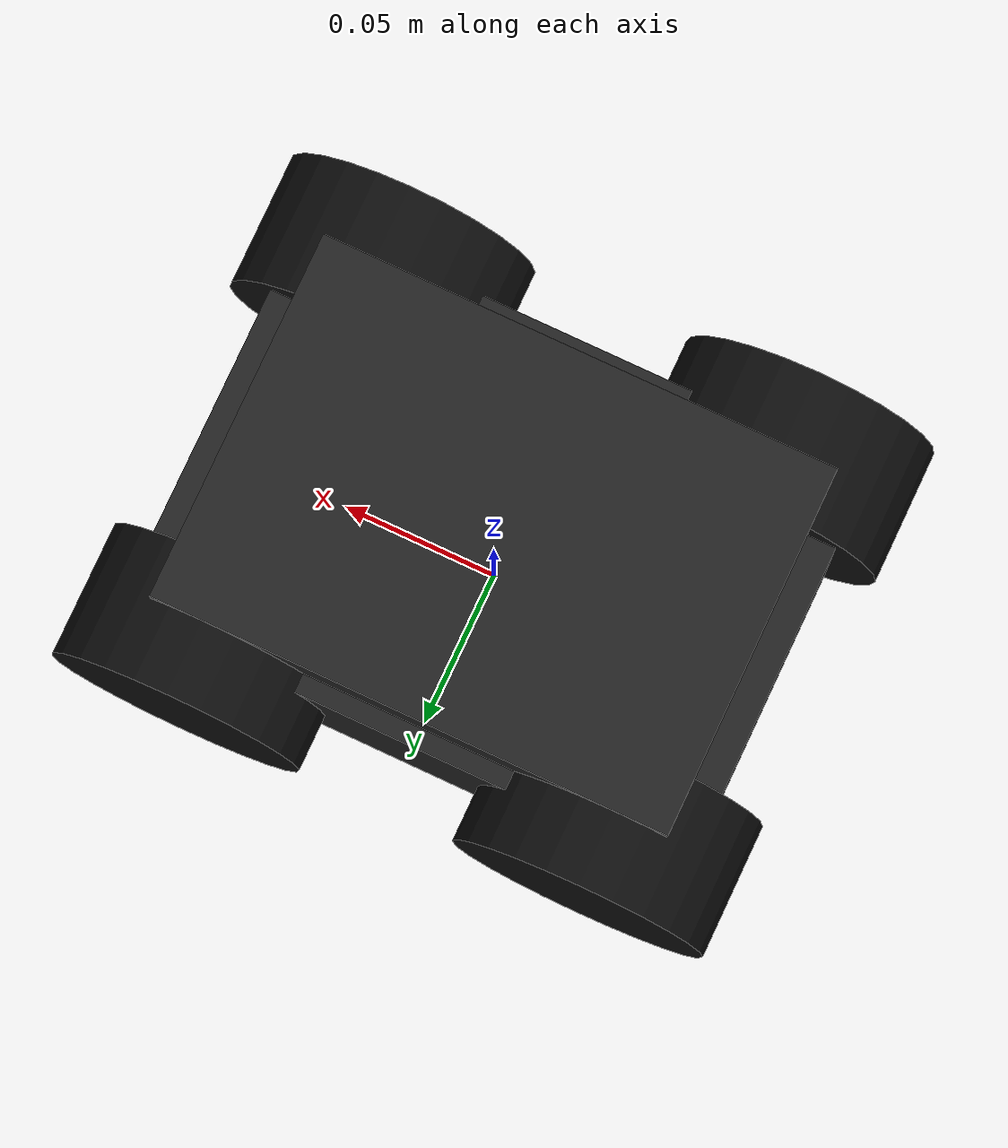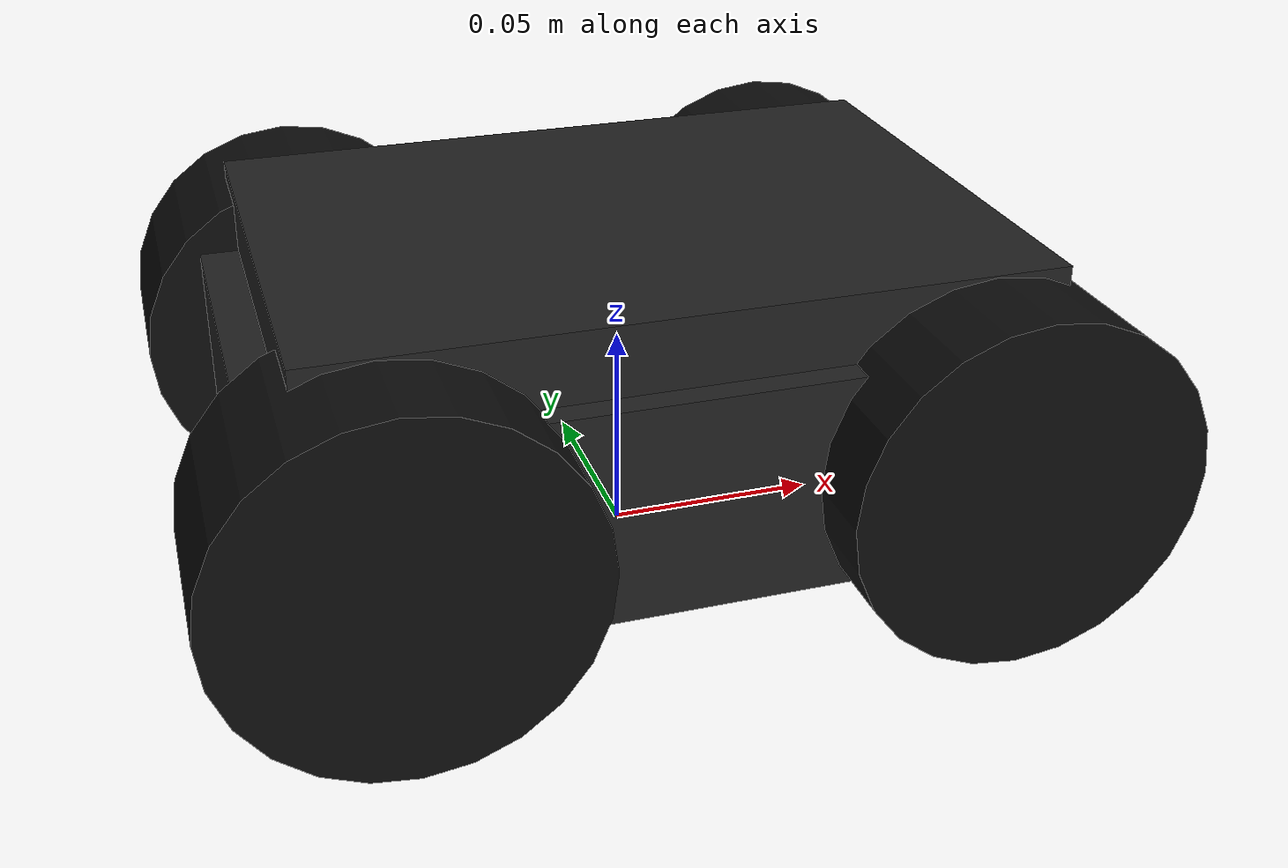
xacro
<?xml version="1.0"?>
<robot xmlns:xacro="http://www.ros.org/wiki/xacro">

  <!-- Rozmery v metroch: telo, kolesa, rozchod (pre Gazebo diff drive a vizual). -->
  <xacro:property name="body_l"       value="0.183"/>
  <xacro:property name="body_w"       value="0.130"/>
  <xacro:property name="body_h"       value="0.050"/>
  <xacro:property name="shell_h"      value="0.016"/>
  <xacro:property name="wheel_radius" value="0.0406"/>
  <xacro:property name="wheel_width"  value="0.0425"/>
  <xacro:property name="wheel_sep"    value="0.123"/>
  <xacro:property name="wheel_base"   value="0.131"/>

  <material name="dark_gray"><color rgba="0.13 0.13 0.13 1"/></material>
  <material name="black">    <color rgba="0.05 0.05 0.05 1"/></material>
  <material name="gray">     <color rgba="0.55 0.55 0.55 1"/></material>
  <material name="orange">   <color rgba="0.95 0.45 0.0  1"/></material>
  <material name="silver">   <color rgba="0.78 0.78 0.78 1"/></material>
  <material name="blue">     <color rgba="0.1  0.1  0.75 1"/></material>

  <!-- base_footprint: projekcia na podlahu; base_link: teleso posunute o polomer kolesa po Z. -->
  <link name="base_footprint"/>
  <joint name="base_footprint_joint" type="fixed">
    <origin xyz="0 0 ${wheel_radius}" rpy="0 0 0"/>
    <parent link="base_footprint"/>
    <child  link="base_link"/>
  </joint>

  <!-- Hlavny box + predny pruh (orientacia v simulacii). -->
  <link name="base_link">
    <inertial>
      <mass value="1.2"/>
      <origin xyz="0 0 0"/>
      <inertia ixx="0.003" iyy="0.005" izz="0.006"
               ixy="0" ixz="0" iyz="0"/>
    </inertial>
    <visual name="body">
      <origin xyz="0 0 0"/>
      <geometry><box size="${body_l} ${body_w} ${body_h}"/></geometry>
      <material name="dark_gray"/>
    </visual>
    <visual name="front_stripe">
      <origin xyz="${body_l/2 - 0.004} 0 0.006"/>
      <geometry><box size="0.006 ${body_w - 0.010} 0.010"/></geometry>
      <material name="orange"/>
    </visual>
    <collision>
      <origin xyz="0 0 0"/>
      <geometry><box size="${body_l} ${body_w} ${body_h}"/></geometry>
    </collision>
  </link>

  <!-- Horna "karoseria" cast, cisto vizual + kolizia. -->
  <link name="top_shell_link">
    <inertial>
      <mass value="0.050"/>
      <origin xyz="0 0 0"/>
      <inertia ixx="1.5e-4" iyy="2.0e-4" izz="3.0e-4"
               ixy="0" ixz="0" iyz="0"/>
    </inertial>
    <visual>
      <origin xyz="0 0 0"/>
      <geometry><box size="0.165 0.118 ${shell_h}"/></geometry>
      <material name="dark_gray"/>
    </visual>
    <collision>
      <origin xyz="0 0 0"/>
      <geometry><box size="0.165 0.118 ${shell_h}"/></geometry>
    </collision>
  </link>
  <joint name="top_shell_joint" type="fixed">
    <origin xyz="0 0 ${body_h/2 + shell_h/2}" rpy="0 0 0"/>
    <parent link="base_link"/>
    <child  link="top_shell_link"/>
  </joint>
  <gazebo reference="top_shell_joint">
    <preserveFixedJoint>true</preserveFixedJoint>
  </gazebo>

  <!--
    Makro kolesa:
    - jedno makro sa pouzije 4x (FL, FR, BL, BR),
    - kazde koleso ma continuous joint okolo osi Y.
  -->
  <xacro:macro name="wheel" params="name xyz">
    <link name="${name}">
      <inertial>
        <mass value="0.061"/>
        <origin xyz="0 0 0"/>
        <inertia ixx="6.7e-5" iyy="4.3e-5" izz="4.3e-5"
                 ixy="0" ixz="0" iyz="0"/>
      </inertial>
      <visual name="tyre">
        <origin xyz="0 0 0" rpy="${pi/2} 0 0"/>
        <geometry><cylinder radius="${wheel_radius}" length="${wheel_width}"/></geometry>
        <material name="black"/>
      </visual>
      <visual name="rim">
        <origin xyz="0 0 0" rpy="${pi/2} 0 0"/>
        <geometry><cylinder radius="${wheel_radius * 0.55}" length="${wheel_width * 0.3}"/></geometry>
        <material name="silver"/>
      </visual>
      <collision>
        <origin xyz="0 0 0" rpy="${pi/2} 0 0"/>
        <geometry><cylinder radius="${wheel_radius}" length="${wheel_width}"/></geometry>
      </collision>
    </link>
    <joint name="${name}_joint" type="continuous">
      <origin xyz="${xyz}" rpy="0 0 0"/>
      <parent link="base_link"/>
      <child  link="${name}"/>
      <axis xyz="0 1 0"/>
      <dynamics damping="0.01" friction="0.0"/>
    </joint>
  </xacro:macro>

  <xacro:wheel name="wheel_front_left"  xyz=" ${wheel_base/2}  ${wheel_sep/2} 0"/>
  <xacro:wheel name="wheel_front_right" xyz=" ${wheel_base/2} -${wheel_sep/2} 0"/>
  <xacro:wheel name="wheel_back_left"   xyz="-${wheel_base/2}  ${wheel_sep/2} 0"/>
  <xacro:wheel name="wheel_back_right"  xyz="-${wheel_base/2} -${wheel_sep/2} 0"/>

  <!-- Povrchove vlastnosti v Gazebe (trenie, material). -->
  <gazebo reference="base_link">
    <mu1>0.2</mu1><mu2>0.2</mu2>
    <selfCollide>false</selfCollide>
    <material>Gazebo/DarkGrey</material>
  </gazebo>
  <gazebo reference="top_shell_link">
    <mu1>0.2</mu1><mu2>0.2</mu2>
    <selfCollide>false</selfCollide>
    <material>Gazebo/DarkGrey</material>
  </gazebo>

  <xacro:macro name="wheel_gz" params="name">
    <gazebo reference="${name}">
      <mu1>1.0</mu1><mu2>0.12</mu2>
      <fdir1>0 1 0</fdir1><kp>1e6</kp><kd>10</kd>
      <selfCollide>false</selfCollide>
      <material>Gazebo/Black</material>
    </gazebo>
  </xacro:macro>
  <xacro:wheel_gz name="wheel_front_left"/>
  <xacro:wheel_gz name="wheel_front_right"/>
  <xacro:wheel_gz name="wheel_back_left"/>
  <xacro:wheel_gz name="wheel_back_right"/>

</robot>
